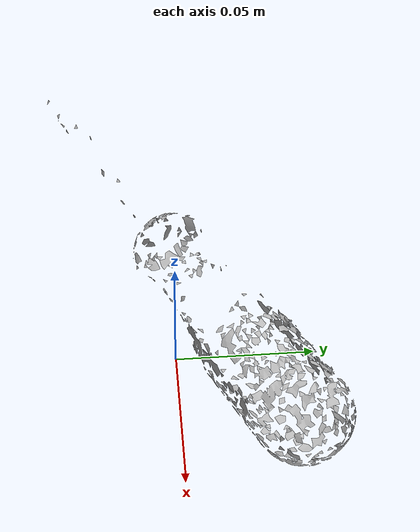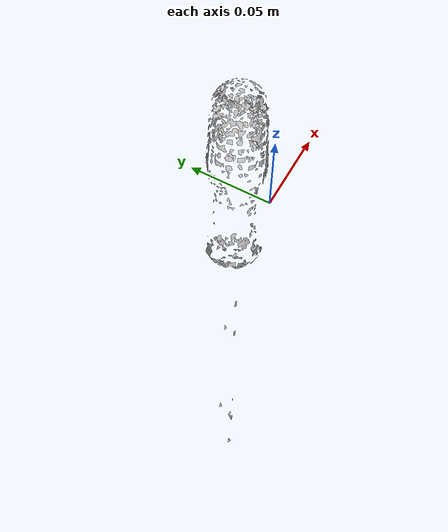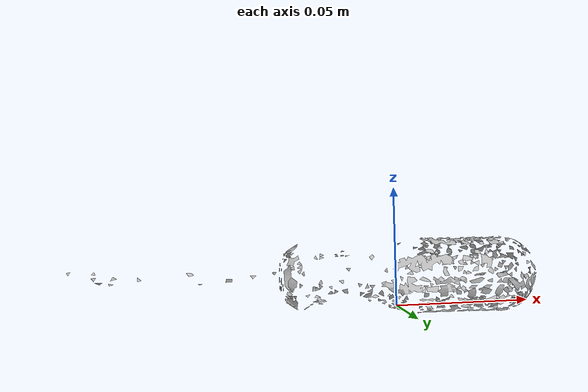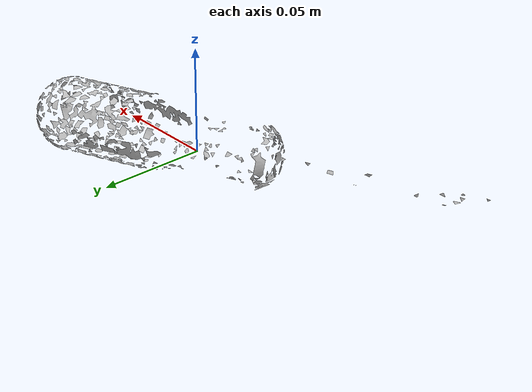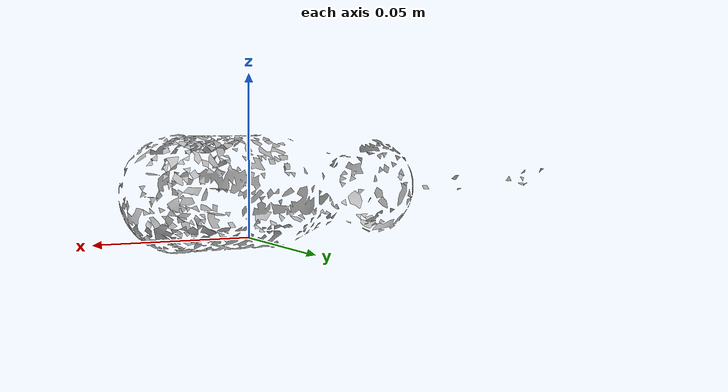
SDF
<?xml version="1.0" ?>
<sdf version="1.4">
  <model name='ycb_043_phillips_screwdriver'>
    <link name='body'>
      <inertial>
        <mass>0.097</mass>
        <pose>0.00266262806429 0.0222238696082 0.0163722755715 0 0 0</pose>
        <inertia>
          <ixx>3.63140479329e-05</ixx>
          <ixy>-5.04552306837e-05</ixy>
          <ixz>-4.89317331555e-06</ixz>
          <iyy>0.000111538182419</iyy>
          <iyz>-2.48523745614e-06</iyz>
          <izz>0.000136643781826</izz>
        </inertia>
      </inertial>
      <visual name='ycb_043_phillips_screwdriver_visual'>
        <pose>0 0 0 0 0 0</pose>
        <geometry>
          <mesh>
            <uri>model://ycb_043_phillips_screwdriver/meshes/textured.dae</uri>
          </mesh>
        </geometry>
      </visual>
      <collision name='ycb_043_phillips_screwdriver_collision'>
        <pose>0 0 0 0 0 0</pose>
        <geometry>
          <mesh>
            <uri>model://ycb_043_phillips_screwdriver/meshes/nontextured.stl</uri>
          </mesh>
        </geometry>
        <max_contacts>10</max_contacts>
      </collision>
    </link>
  </model>
</sdf>
